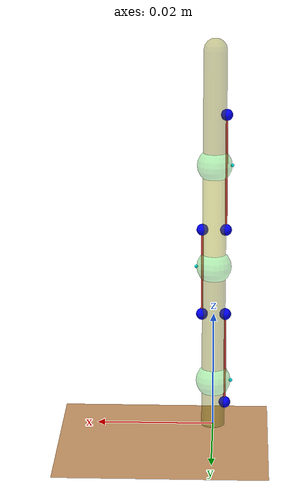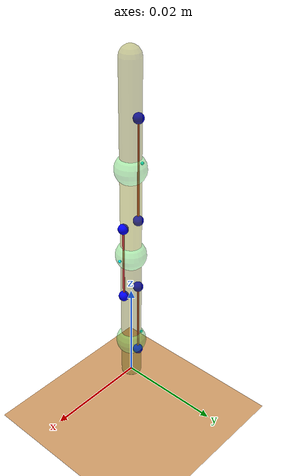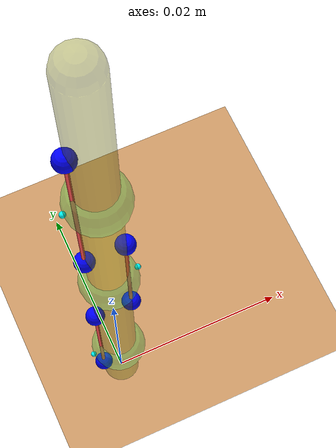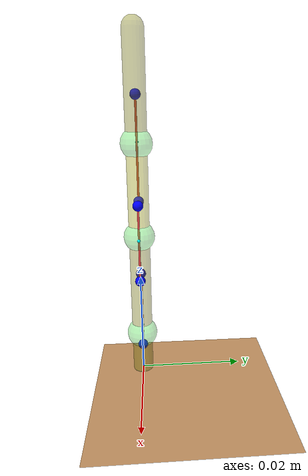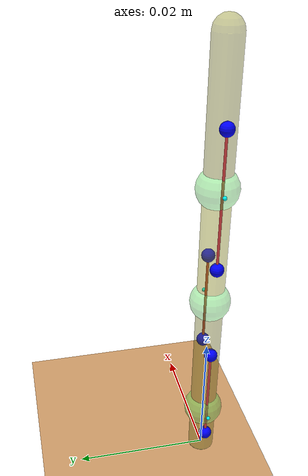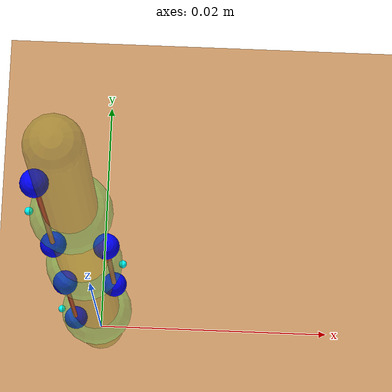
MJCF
<mujoco model="3SegRMdevel">
	<compiler coordinate="global"/>
	<option timestep="0.001" integrator="RK4" collision="predefined">
		<flag gravity="enable" contact="enable" passive="enable"/>

	</option>
	<size nkey="1" />

	<default>
		<geom rgba=".8 .6 .4 0.5"/>
	</default>

	<asset>
		<texture type="skybox" builtin="gradient" rgb1="1 1 1" rgb2=".6 .8 1" width="256" height="256"/>
		<texture name="texplane" type="2d" builtin="checker" rgb1=".2 .3 .4" rgb2=".1 0.15 0.2"
            width="100" height="100"/>
		<material name='MatPlane' reflectance='0.5' texture="texplane" texrepeat="1 1" texuniform="true"/>

	</asset>

	<worldbody>
		<light pos="0 1 1" dir="0 -1 -1" diffuse="1 1 1"/>
		<geom name='floor' pos='0 0 0' size='1 1 0.125' type='plane' material="MatPlane"/><!-- make the floor the same distance as the foot sphere radius -->
		<body name="s_tar"><!-- Tarsals -->
			<inertial pos="0 0. 0" mass="0.00015557" diaginertia="1.279E-09 3.99E-10 1.264E-09" />
			<geom name="geom_tar" type="capsule" fromto="0 0 0 0 0. 0.0080277" size="0.002" rgba="0.5 0.5 0 .4"/>
			<joint name="j_tmt" type="free" pos="0 0. 0" stiffness="0"/>
			<site name="t_ank_prx" pos="-0.002 0 0.004" size="0.001" rgba="0 0 1 1"/>
			<geom name="footSphere" type="sphere" pos="0 0 0" size="0.002" rgba=".3 .9 .3 .4"/><!-- seems to be necessary for ground contact -->
			<body name="s_tib"><!-- Tibfib -->
				<inertial pos="0 0. 0.0080277" mass="0.00036153" diaginertia="6.383E-09 1.524E-09 6.6E-09"/>
				<geom type="capsule" fromto="0 0. 0.0080277  0 0. 0.0284948" size="0.002" rgba="0.5 0.5 0 .4"/>
				<joint name="j_ank" type="hinge" axis="0 1 0" pos="0 0. 0.0080277" stiffness="1" springdamper=".002 1"/> <!-- stiffness="0" springdamper=".002 1" first parameter time constant at least 2x dt. Second damping ratio 1 for critical damping -->
				<site name="t_ank_dst" pos="-0.002 0 0.02" size="0.001" rgba="0 0 1 1"/>
				<site name="t_kne_prx" pos="0.002 0 0.02" size="0.001" rgba="0 0 1 1"/>
				<geom name="jointSphere_ank" type="sphere" pos="0 0 0.0080277" size="0.003" rgba=".3 .9 .3 .4"/>
				<site name="t_ank_via" pos="-0.003 0 0.0080277" size="0.0003" rgba="0 1 1 1"/>
				<body name="s_fem"><!-- Femur -->
					<inertial pos="0 0. 0.0284948" mass="0.00077613" diaginertia="1.57E-08 6.71E-09 1.594E-08"/>
					<geom type="capsule" fromto="0 0. 0.0284948  0 0. 0.046286" size="0.002" rgba="0.7 0.7 0 .4"/>
					<joint name="j_kne" type="hinge" axis="0 1 0" pos="0 0. 0.0284948" stiffness="1" springdamper=".002 1"/>
					<site name="t_kne_dst" pos="0.002 0 0.035" size="0.001" rgba="0 0 1 1"/>
					<site name="t_hip_prx" pos="-0.002 0 0.035" size="0.001" rgba="0 0 1 1"/>
					<geom name="jointSphere_kne" type="sphere" pos="0 0. 0.0284948" size="0.003" rgba=".3 .9 .3 .4"/>
					<site name="t_kne_via" pos="0.003 0 0.0284948" size="0.0003" rgba="0 1 1 1"/>
					<body name="s_bod"><!-- Body -->
						<inertial pos="0 0. 0.046286" mass="0.0045" diaginertia="0.000000891 0.000000473 0.00000112"/> <!-- note 0.5 body mass -->
						<geom type="capsule" fromto="0 0. 0.046286  0 0. 0.0660299" size="0.002" rgba="0.5 0.5 0 .4"/>
						<site name="t_hip_dst" pos="-0.002 0 0.055" size="0.001" rgba="0 0 1 1"/>
						<geom name="jointSphere_hip" type="sphere" pos="0 0. 0.046286" size="0.003" rgba=".3 .9 .3 .4"/>
						<site name="t_hip_via" pos="-0.003 0 0.0462868" size="0.0003" rgba="0 1 1 1"/>
						<joint name="j_hip" type="hinge" axis="0 1 0" pos="0 0. 0.046286" stiffness="1" springdamper=".002 1"/>
						<body name="s_bod_marker"><!-- body marker for kinematics saving-->
							<inertial pos="0 0. 0.0660299" mass="0.0000001"/>
							<geom type="capsule" fromto="0 0. 0.0660299  0 0. 0.0661" size="0.0002" rgba="0.5 0.5 0 .4"/>
						</body>
					</body>
				</body>
			</body>
		</body>

	</worldbody>
	<contact>
		<pair geom1="floor" geom2="geom_tar" friction="1 1 0.5 0.0001 0.0001"/>
	</contact>
	<equality>
	</equality>
	<tendon>
		<spatial width="0.0002" rgba=".95 .3 .3 1" limited="false" name="tend_ank">
			<site site="t_ank_prx"/>
			<geom geom="jointSphere_ank" sidesite="t_ank_via"/>
			<site site="t_ank_dst"/>
		</spatial>
		<spatial width="0.0002" rgba=".95 .3 .3 1" limited="false" name="tend_kne">
			<site site="t_kne_prx"/>
			<geom geom="jointSphere_kne" sidesite="t_kne_via"/>
			<site site="t_kne_dst"/>
		</spatial>
		<spatial width="0.0002" rgba=".95 .3 .3 1" limited="false" name="tend_hip">
			<site site="t_hip_prx"/>
			<geom geom="jointSphere_hip" sidesite="t_hip_via"/>
			<site site="t_hip_dst"/>
		</spatial>
	</tendon>
	<actuator>

		<!--  ================= Torque actuators ================= /-->
		<motor tendon='tend_ank' name='a_tend_ank'/>
		<motor tendon='tend_kne' name='a_tend_kne'/>
		<motor tendon='tend_hip' name='a_tend_hip'/>
	</actuator>
	<sensor>
		<tendonpos tendon="tend_ank"/>
	</sensor>

	<keyframe>

	</keyframe>
</mujoco>
